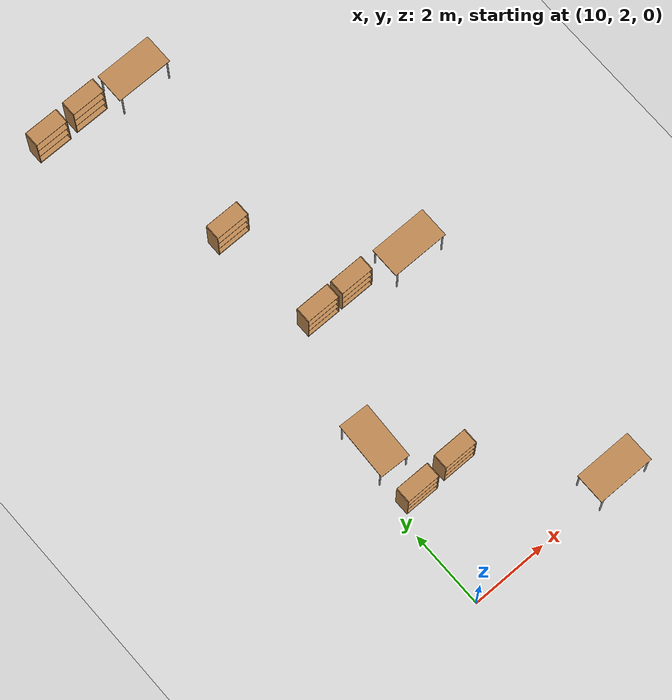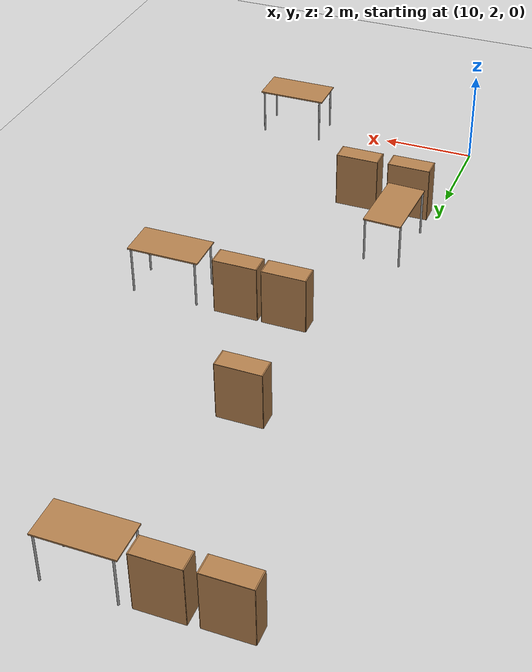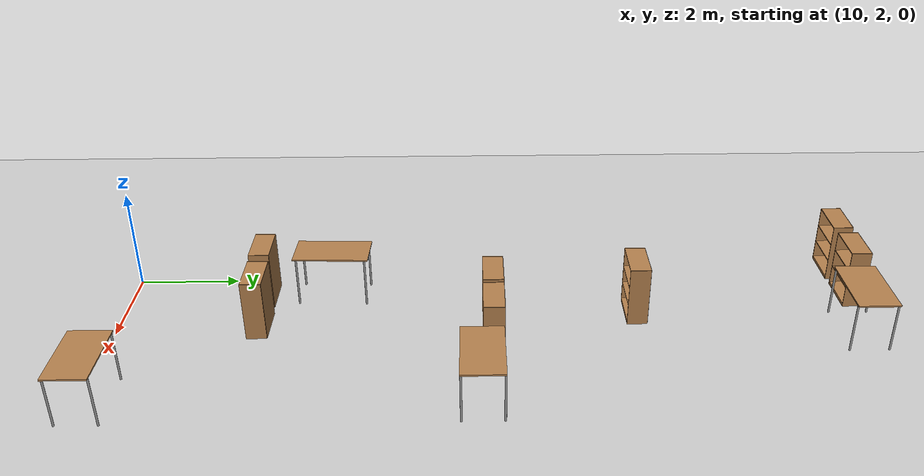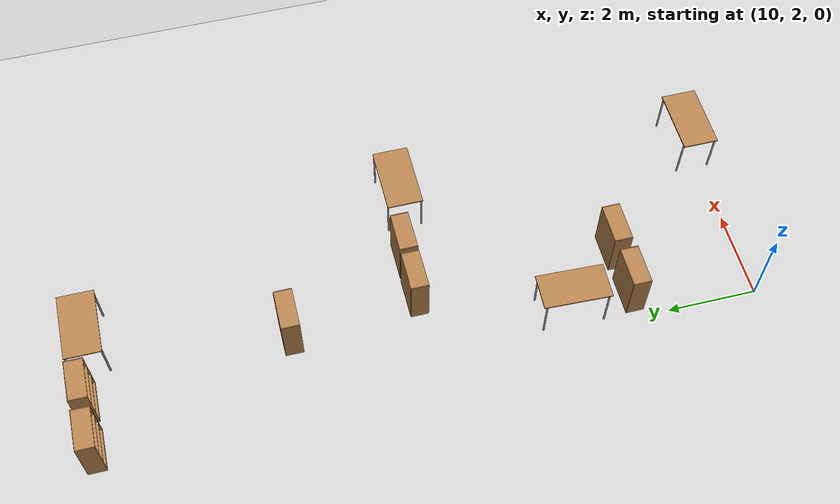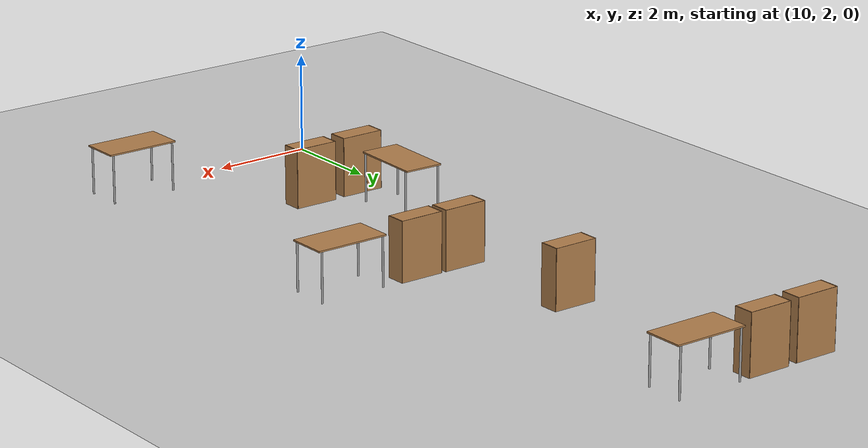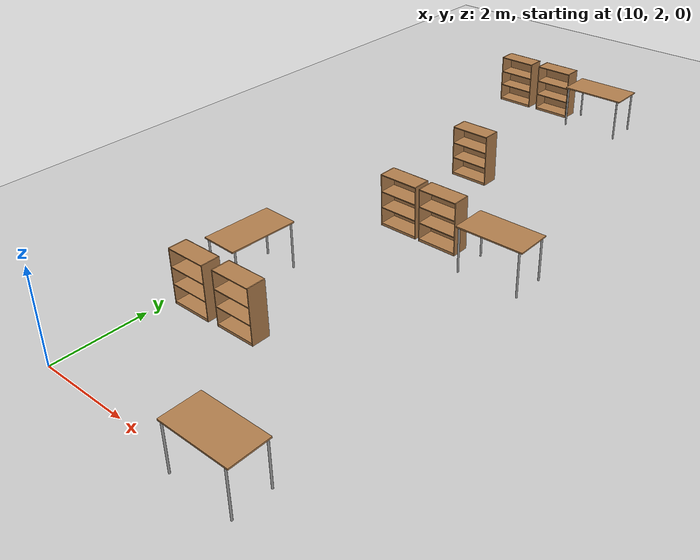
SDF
<sdf version="1.7">
 <world name="default">
  <model name="ground_plane">
   <static>1</static>
   <link name="link">
    <collision name="collision">
     <geometry><plane><normal>0 0 1</normal><size>100 100</size></plane></geometry>
     <surface><friction><ode><mu>100</mu><mu2>50</mu2></ode></friction></surface>
    </collision>
    <visual name="visual">
     <cast_shadows>0</cast_shadows>
     <geometry><plane><normal>0 0 1</normal><size>100 100</size></plane></geometry>
     <material>
      <script><uri>file://media/materials/scripts/gazebo.material</uri><name>Gazebo/Grey</name></script>
     </material>
    </visual>
   </link>
  </model>
  <model name="bookshelf_0">
   <static>1</static>
   <link name="link">
    <inertial><mass>1</mass></inertial>
    <collision name="back">
     <pose>0 0.005 0.6 0 -0 0</pose>
     <geometry><box><size>0.9 0.01 1.2</size></box></geometry>
    </collision>
    <visual name="visual1">
     <pose>0 0.005 0.6 0 -0 0</pose>
     <geometry><box><size>0.9 0.01 1.2</size></box></geometry>
     <material>
      <script><uri>file://media/materials/scripts/gazebo.material</uri><name>Gazebo/Wood</name></script>
     </material>
    </visual>
    <collision name="left_side">
     <pose>0.45 -0.195 0.6 0 -0 0</pose>
     <geometry><box><size>0.02 0.4 1.2</size></box></geometry>
    </collision>
    <visual name="visual2">
     <pose>0.45 -0.195 0.6 0 -0 0</pose>
     <geometry><box><size>0.02 0.4 1.2</size></box></geometry>
     <material>
      <script><uri>file://media/materials/scripts/gazebo.material</uri><name>Gazebo/Wood</name></script>
     </material>
    </visual>
    <collision name="right_side">
     <pose>-0.45 -0.195 0.6 0 -0 0</pose>
     <geometry><box><size>0.02 0.4 1.2</size></box></geometry>
    </collision>
    <visual name="visual3">
     <pose>-0.45 -0.195 0.6 0 -0 0</pose>
     <geometry><box><size>0.02 0.4 1.2</size></box></geometry>
     <material>
      <script><uri>file://media/materials/scripts/gazebo.material</uri><name>Gazebo/Wood</name></script>
     </material>
    </visual>
    <collision name="bottom">
     <pose>0 -0.195 0.03 0 -0 0</pose>
     <geometry><box><size>0.88 0.4 0.06</size></box></geometry>
    </collision>
    <visual name="visual4">
     <pose>0 -0.195 0.03 0 -0 0</pose>
     <geometry><box><size>0.88 0.4 0.06</size></box></geometry>
     <material>
      <script><uri>file://media/materials/scripts/gazebo.material</uri><name>Gazebo/Wood</name></script>
     </material>
    </visual>
    <collision name="top">
     <pose>0 -0.195 1.19 0 -0 0</pose>
     <geometry><box><size>0.88 0.4 0.02</size></box></geometry>
    </collision>
    <visual name="visual5">
     <pose>0 -0.195 1.19 0 -0 0</pose>
     <geometry><box><size>0.88 0.4 0.02</size></box></geometry>
     <material>
      <script><uri>file://media/materials/scripts/gazebo.material</uri><name>Gazebo/Wood</name></script>
     </material>
    </visual>
    <collision name="low_shelf">
     <pose>0 -0.195 0.43 0 -0 0</pose>
     <geometry><box><size>0.88 0.4 0.02</size></box></geometry>
    </collision>
    <visual name="visual6">
     <pose>0 -0.195 0.43 0 -0 0</pose>
     <geometry><box><size>0.88 0.4 0.02</size></box></geometry>
     <material>
      <script><uri>file://media/materials/scripts/gazebo.material</uri><name>Gazebo/Wood</name></script>
     </material>
    </visual>
    <collision name="high_shelf">
     <pose>0 -0.195 0.8 0 -0 0</pose>
     <geometry><box><size>0.88 0.4 0.02</size></box></geometry>
    </collision>
    <visual name="visual7">
     <pose>0 -0.195 0.8 0 -0 0</pose>
     <geometry><box><size>0.88 0.4 0.02</size></box></geometry>
     <material>
      <script><uri>file://media/materials/scripts/gazebo.material</uri><name>Gazebo/Wood</name></script>
     </material>
    </visual>
   </link>
   <pose>11.3913 12.3426 0 0 -0 0</pose>
  </model>
  <model name="bookshelf_6">
   <static>1</static>
   <link name="link">
    <inertial><mass>1</mass></inertial>
    <collision name="back">
     <pose>0 0.005 0.6 0 -0 0</pose>
     <geometry><box><size>0.9 0.01 1.2</size></box></geometry>
    </collision>
    <visual name="visual1">
     <pose>0 0.005 0.6 0 -0 0</pose>
     <geometry><box><size>0.9 0.01 1.2</size></box></geometry>
     <material>
      <script><uri>file://media/materials/scripts/gazebo.material</uri><name>Gazebo/Wood</name></script>
     </material>
    </visual>
    <collision name="left_side">
     <pose>0.45 -0.195 0.6 0 -0 0</pose>
     <geometry><box><size>0.02 0.4 1.2</size></box></geometry>
    </collision>
    <visual name="visual2">
     <pose>0.45 -0.195 0.6 0 -0 0</pose>
     <geometry><box><size>0.02 0.4 1.2</size></box></geometry>
     <material>
      <script><uri>file://media/materials/scripts/gazebo.material</uri><name>Gazebo/Wood</name></script>
     </material>
    </visual>
    <collision name="right_side">
     <pose>-0.45 -0.195 0.6 0 -0 0</pose>
     <geometry><box><size>0.02 0.4 1.2</size></box></geometry>
    </collision>
    <visual name="visual3">
     <pose>-0.45 -0.195 0.6 0 -0 0</pose>
     <geometry><box><size>0.02 0.4 1.2</size></box></geometry>
     <material>
      <script><uri>file://media/materials/scripts/gazebo.material</uri><name>Gazebo/Wood</name></script>
     </material>
    </visual>
    <collision name="bottom">
     <pose>0 -0.195 0.03 0 -0 0</pose>
     <geometry><box><size>0.88 0.4 0.06</size></box></geometry>
    </collision>
    <visual name="visual4">
     <pose>0 -0.195 0.03 0 -0 0</pose>
     <geometry><box><size>0.88 0.4 0.06</size></box></geometry>
     <material>
      <script><uri>file://media/materials/scripts/gazebo.material</uri><name>Gazebo/Wood</name></script>
     </material>
    </visual>
    <collision name="top">
     <pose>0 -0.195 1.19 0 -0 0</pose>
     <geometry><box><size>0.88 0.4 0.02</size></box></geometry>
    </collision>
    <visual name="visual5">
     <pose>0 -0.195 1.19 0 -0 0</pose>
     <geometry><box><size>0.88 0.4 0.02</size></box></geometry>
     <material>
      <script><uri>file://media/materials/scripts/gazebo.material</uri><name>Gazebo/Wood</name></script>
     </material>
    </visual>
    <collision name="low_shelf">
     <pose>0 -0.195 0.43 0 -0 0</pose>
     <geometry><box><size>0.88 0.4 0.02</size></box></geometry>
    </collision>
    <visual name="visual6">
     <pose>0 -0.195 0.43 0 -0 0</pose>
     <geometry><box><size>0.88 0.4 0.02</size></box></geometry>
     <material>
      <script><uri>file://media/materials/scripts/gazebo.material</uri><name>Gazebo/Wood</name></script>
     </material>
    </visual>
    <collision name="high_shelf">
     <pose>0 -0.195 0.8 0 -0 0</pose>
     <geometry><box><size>0.88 0.4 0.02</size></box></geometry>
    </collision>
    <visual name="visual7">
     <pose>0 -0.195 0.8 0 -0 0</pose>
     <geometry><box><size>0.88 0.4 0.02</size></box></geometry>
     <material>
      <script><uri>file://media/materials/scripts/gazebo.material</uri><name>Gazebo/Wood</name></script>
     </material>
    </visual>
   </link>
   <pose>11.6676 9.51183 0 0 -0 0</pose>
  </model>
  <model name="bookshelf_7">
   <static>1</static>
   <link name="link">
    <inertial><mass>1</mass></inertial>
    <collision name="back">
     <pose>0 0.005 0.6 0 -0 0</pose>
     <geometry><box><size>0.9 0.01 1.2</size></box></geometry>
    </collision>
    <visual name="visual1">
     <pose>0 0.005 0.6 0 -0 0</pose>
     <geometry><box><size>0.9 0.01 1.2</size></box></geometry>
     <material>
      <script><uri>file://media/materials/scripts/gazebo.material</uri><name>Gazebo/Wood</name></script>
     </material>
    </visual>
    <collision name="left_side">
     <pose>0.45 -0.195 0.6 0 -0 0</pose>
     <geometry><box><size>0.02 0.4 1.2</size></box></geometry>
    </collision>
    <visual name="visual2">
     <pose>0.45 -0.195 0.6 0 -0 0</pose>
     <geometry><box><size>0.02 0.4 1.2</size></box></geometry>
     <material>
      <script><uri>file://media/materials/scripts/gazebo.material</uri><name>Gazebo/Wood</name></script>
     </material>
    </visual>
    <collision name="right_side">
     <pose>-0.45 -0.195 0.6 0 -0 0</pose>
     <geometry><box><size>0.02 0.4 1.2</size></box></geometry>
    </collision>
    <visual name="visual3">
     <pose>-0.45 -0.195 0.6 0 -0 0</pose>
     <geometry><box><size>0.02 0.4 1.2</size></box></geometry>
     <material>
      <script><uri>file://media/materials/scripts/gazebo.material</uri><name>Gazebo/Wood</name></script>
     </material>
    </visual>
    <collision name="bottom">
     <pose>0 -0.195 0.03 0 -0 0</pose>
     <geometry><box><size>0.88 0.4 0.06</size></box></geometry>
    </collision>
    <visual name="visual4">
     <pose>0 -0.195 0.03 0 -0 0</pose>
     <geometry><box><size>0.88 0.4 0.06</size></box></geometry>
     <material>
      <script><uri>file://media/materials/scripts/gazebo.material</uri><name>Gazebo/Wood</name></script>
     </material>
    </visual>
    <collision name="top">
     <pose>0 -0.195 1.19 0 -0 0</pose>
     <geometry><box><size>0.88 0.4 0.02</size></box></geometry>
    </collision>
    <visual name="visual5">
     <pose>0 -0.195 1.19 0 -0 0</pose>
     <geometry><box><size>0.88 0.4 0.02</size></box></geometry>
     <material>
      <script><uri>file://media/materials/scripts/gazebo.material</uri><name>Gazebo/Wood</name></script>
     </material>
    </visual>
    <collision name="low_shelf">
     <pose>0 -0.195 0.43 0 -0 0</pose>
     <geometry><box><size>0.88 0.4 0.02</size></box></geometry>
    </collision>
    <visual name="visual6">
     <pose>0 -0.195 0.43 0 -0 0</pose>
     <geometry><box><size>0.88 0.4 0.02</size></box></geometry>
     <material>
      <script><uri>file://media/materials/scripts/gazebo.material</uri><name>Gazebo/Wood</name></script>
     </material>
    </visual>
    <collision name="high_shelf">
     <pose>0 -0.195 0.8 0 -0 0</pose>
     <geometry><box><size>0.88 0.4 0.02</size></box></geometry>
    </collision>
    <visual name="visual7">
     <pose>0 -0.195 0.8 0 -0 0</pose>
     <geometry><box><size>0.88 0.4 0.02</size></box></geometry>
     <material>
      <script><uri>file://media/materials/scripts/gazebo.material</uri><name>Gazebo/Wood</name></script>
     </material>
    </visual>
   </link>
   <pose>12.6698 9.5071 0 0 -0 0</pose>
  </model>
  <model name="bookshelf_8">
   <static>1</static>
   <link name="link">
    <inertial><mass>1</mass></inertial>
    <collision name="back">
     <pose>0 0.005 0.6 0 -0 0</pose>
     <geometry><box><size>0.9 0.01 1.2</size></box></geometry>
    </collision>
    <visual name="visual1">
     <pose>0 0.005 0.6 0 -0 0</pose>
     <geometry><box><size>0.9 0.01 1.2</size></box></geometry>
     <material>
      <script><uri>file://media/materials/scripts/gazebo.material</uri><name>Gazebo/Wood</name></script>
     </material>
    </visual>
    <collision name="left_side">
     <pose>0.45 -0.195 0.6 0 -0 0</pose>
     <geometry><box><size>0.02 0.4 1.2</size></box></geometry>
    </collision>
    <visual name="visual2">
     <pose>0.45 -0.195 0.6 0 -0 0</pose>
     <geometry><box><size>0.02 0.4 1.2</size></box></geometry>
     <material>
      <script><uri>file://media/materials/scripts/gazebo.material</uri><name>Gazebo/Wood</name></script>
     </material>
    </visual>
    <collision name="right_side">
     <pose>-0.45 -0.195 0.6 0 -0 0</pose>
     <geometry><box><size>0.02 0.4 1.2</size></box></geometry>
    </collision>
    <visual name="visual3">
     <pose>-0.45 -0.195 0.6 0 -0 0</pose>
     <geometry><box><size>0.02 0.4 1.2</size></box></geometry>
     <material>
      <script><uri>file://media/materials/scripts/gazebo.material</uri><name>Gazebo/Wood</name></script>
     </material>
    </visual>
    <collision name="bottom">
     <pose>0 -0.195 0.03 0 -0 0</pose>
     <geometry><box><size>0.88 0.4 0.06</size></box></geometry>
    </collision>
    <visual name="visual4">
     <pose>0 -0.195 0.03 0 -0 0</pose>
     <geometry><box><size>0.88 0.4 0.06</size></box></geometry>
     <material>
      <script><uri>file://media/materials/scripts/gazebo.material</uri><name>Gazebo/Wood</name></script>
     </material>
    </visual>
    <collision name="top">
     <pose>0 -0.195 1.19 0 -0 0</pose>
     <geometry><box><size>0.88 0.4 0.02</size></box></geometry>
    </collision>
    <visual name="visual5">
     <pose>0 -0.195 1.19 0 -0 0</pose>
     <geometry><box><size>0.88 0.4 0.02</size></box></geometry>
     <material>
      <script><uri>file://media/materials/scripts/gazebo.material</uri><name>Gazebo/Wood</name></script>
     </material>
    </visual>
    <collision name="low_shelf">
     <pose>0 -0.195 0.43 0 -0 0</pose>
     <geometry><box><size>0.88 0.4 0.02</size></box></geometry>
    </collision>
    <visual name="visual6">
     <pose>0 -0.195 0.43 0 -0 0</pose>
     <geometry><box><size>0.88 0.4 0.02</size></box></geometry>
     <material>
      <script><uri>file://media/materials/scripts/gazebo.material</uri><name>Gazebo/Wood</name></script>
     </material>
    </visual>
    <collision name="high_shelf">
     <pose>0 -0.195 0.8 0 -0 0</pose>
     <geometry><box><size>0.88 0.4 0.02</size></box></geometry>
    </collision>
    <visual name="visual7">
     <pose>0 -0.195 0.8 0 -0 0</pose>
     <geometry><box><size>0.88 0.4 0.02</size></box></geometry>
     <material>
      <script><uri>file://media/materials/scripts/gazebo.material</uri><name>Gazebo/Wood</name></script>
     </material>
    </visual>
   </link>
   <pose>9.70396 16.7596 0 0 -0 0</pose>
  </model>
  <model name="bookshelf_9">
   <static>1</static>
   <link name="link">
    <inertial><mass>1</mass></inertial>
    <collision name="back">
     <pose>0 0.005 0.6 0 -0 0</pose>
     <geometry><box><size>0.9 0.01 1.2</size></box></geometry>
    </collision>
    <visual name="visual1">
     <pose>0 0.005 0.6 0 -0 0</pose>
     <geometry><box><size>0.9 0.01 1.2</size></box></geometry>
     <material>
      <script><uri>file://media/materials/scripts/gazebo.material</uri><name>Gazebo/Wood</name></script>
     </material>
    </visual>
    <collision name="left_side">
     <pose>0.45 -0.195 0.6 0 -0 0</pose>
     <geometry><box><size>0.02 0.4 1.2</size></box></geometry>
    </collision>
    <visual name="visual2">
     <pose>0.45 -0.195 0.6 0 -0 0</pose>
     <geometry><box><size>0.02 0.4 1.2</size></box></geometry>
     <material>
      <script><uri>file://media/materials/scripts/gazebo.material</uri><name>Gazebo/Wood</name></script>
     </material>
    </visual>
    <collision name="right_side">
     <pose>-0.45 -0.195 0.6 0 -0 0</pose>
     <geometry><box><size>0.02 0.4 1.2</size></box></geometry>
    </collision>
    <visual name="visual3">
     <pose>-0.45 -0.195 0.6 0 -0 0</pose>
     <geometry><box><size>0.02 0.4 1.2</size></box></geometry>
     <material>
      <script><uri>file://media/materials/scripts/gazebo.material</uri><name>Gazebo/Wood</name></script>
     </material>
    </visual>
    <collision name="bottom">
     <pose>0 -0.195 0.03 0 -0 0</pose>
     <geometry><box><size>0.88 0.4 0.06</size></box></geometry>
    </collision>
    <visual name="visual4">
     <pose>0 -0.195 0.03 0 -0 0</pose>
     <geometry><box><size>0.88 0.4 0.06</size></box></geometry>
     <material>
      <script><uri>file://media/materials/scripts/gazebo.material</uri><name>Gazebo/Wood</name></script>
     </material>
    </visual>
    <collision name="top">
     <pose>0 -0.195 1.19 0 -0 0</pose>
     <geometry><box><size>0.88 0.4 0.02</size></box></geometry>
    </collision>
    <visual name="visual5">
     <pose>0 -0.195 1.19 0 -0 0</pose>
     <geometry><box><size>0.88 0.4 0.02</size></box></geometry>
     <material>
      <script><uri>file://media/materials/scripts/gazebo.material</uri><name>Gazebo/Wood</name></script>
     </material>
    </visual>
    <collision name="low_shelf">
     <pose>0 -0.195 0.43 0 -0 0</pose>
     <geometry><box><size>0.88 0.4 0.02</size></box></geometry>
    </collision>
    <visual name="visual6">
     <pose>0 -0.195 0.43 0 -0 0</pose>
     <geometry><box><size>0.88 0.4 0.02</size></box></geometry>
     <material>
      <script><uri>file://media/materials/scripts/gazebo.material</uri><name>Gazebo/Wood</name></script>
     </material>
    </visual>
    <collision name="high_shelf">
     <pose>0 -0.195 0.8 0 -0 0</pose>
     <geometry><box><size>0.88 0.4 0.02</size></box></geometry>
    </collision>
    <visual name="visual7">
     <pose>0 -0.195 0.8 0 -0 0</pose>
     <geometry><box><size>0.88 0.4 0.02</size></box></geometry>
     <material>
      <script><uri>file://media/materials/scripts/gazebo.material</uri><name>Gazebo/Wood</name></script>
     </material>
    </visual>
   </link>
   <pose>10.8167 16.7835 0 0 -0 0</pose>
  </model>
  <model name="bookshelf_10">
   <static>1</static>
   <link name="link">
    <inertial><mass>1</mass></inertial>
    <collision name="back">
     <pose>0 0.005 0.6 0 -0 0</pose>
     <geometry><box><size>0.9 0.01 1.2</size></box></geometry>
    </collision>
    <visual name="visual1">
     <pose>0 0.005 0.6 0 -0 0</pose>
     <geometry><box><size>0.9 0.01 1.2</size></box></geometry>
     <material>
      <script><uri>file://media/materials/scripts/gazebo.material</uri><name>Gazebo/Wood</name></script>
     </material>
    </visual>
    <collision name="left_side">
     <pose>0.45 -0.195 0.6 0 -0 0</pose>
     <geometry><box><size>0.02 0.4 1.2</size></box></geometry>
    </collision>
    <visual name="visual2">
     <pose>0.45 -0.195 0.6 0 -0 0</pose>
     <geometry><box><size>0.02 0.4 1.2</size></box></geometry>
     <material>
      <script><uri>file://media/materials/scripts/gazebo.material</uri><name>Gazebo/Wood</name></script>
     </material>
    </visual>
    <collision name="right_side">
     <pose>-0.45 -0.195 0.6 0 -0 0</pose>
     <geometry><box><size>0.02 0.4 1.2</size></box></geometry>
    </collision>
    <visual name="visual3">
     <pose>-0.45 -0.195 0.6 0 -0 0</pose>
     <geometry><box><size>0.02 0.4 1.2</size></box></geometry>
     <material>
      <script><uri>file://media/materials/scripts/gazebo.material</uri><name>Gazebo/Wood</name></script>
     </material>
    </visual>
    <collision name="bottom">
     <pose>0 -0.195 0.03 0 -0 0</pose>
     <geometry><box><size>0.88 0.4 0.06</size></box></geometry>
    </collision>
    <visual name="visual4">
     <pose>0 -0.195 0.03 0 -0 0</pose>
     <geometry><box><size>0.88 0.4 0.06</size></box></geometry>
     <material>
      <script><uri>file://media/materials/scripts/gazebo.material</uri><name>Gazebo/Wood</name></script>
     </material>
    </visual>
    <collision name="top">
     <pose>0 -0.195 1.19 0 -0 0</pose>
     <geometry><box><size>0.88 0.4 0.02</size></box></geometry>
    </collision>
    <visual name="visual5">
     <pose>0 -0.195 1.19 0 -0 0</pose>
     <geometry><box><size>0.88 0.4 0.02</size></box></geometry>
     <material>
      <script><uri>file://media/materials/scripts/gazebo.material</uri><name>Gazebo/Wood</name></script>
     </material>
    </visual>
    <collision name="low_shelf">
     <pose>0 -0.195 0.43 0 -0 0</pose>
     <geometry><box><size>0.88 0.4 0.02</size></box></geometry>
    </collision>
    <visual name="visual6">
     <pose>0 -0.195 0.43 0 -0 0</pose>
     <geometry><box><size>0.88 0.4 0.02</size></box></geometry>
     <material>
      <script><uri>file://media/materials/scripts/gazebo.material</uri><name>Gazebo/Wood</name></script>
     </material>
    </visual>
    <collision name="high_shelf">
     <pose>0 -0.195 0.8 0 -0 0</pose>
     <geometry><box><size>0.88 0.4 0.02</size></box></geometry>
    </collision>
    <visual name="visual7">
     <pose>0 -0.195 0.8 0 -0 0</pose>
     <geometry><box><size>0.88 0.4 0.02</size></box></geometry>
     <material>
      <script><uri>file://media/materials/scripts/gazebo.material</uri><name>Gazebo/Wood</name></script>
     </material>
    </visual>
   </link>
   <pose>10.6299 4.9198 0 0 -0 0</pose>
  </model>
  <model name="bookshelf_11">
   <static>1</static>
   <link name="link">
    <inertial><mass>1</mass></inertial>
    <collision name="back">
     <pose>0 0.005 0.6 0 -0 0</pose>
     <geometry><box><size>0.9 0.01 1.2</size></box></geometry>
    </collision>
    <visual name="visual1">
     <pose>0 0.005 0.6 0 -0 0</pose>
     <geometry><box><size>0.9 0.01 1.2</size></box></geometry>
     <material>
      <script><uri>file://media/materials/scripts/gazebo.material</uri><name>Gazebo/Wood</name></script>
     </material>
    </visual>
    <collision name="left_side">
     <pose>0.45 -0.195 0.6 0 -0 0</pose>
     <geometry><box><size>0.02 0.4 1.2</size></box></geometry>
    </collision>
    <visual name="visual2">
     <pose>0.45 -0.195 0.6 0 -0 0</pose>
     <geometry><box><size>0.02 0.4 1.2</size></box></geometry>
     <material>
      <script><uri>file://media/materials/scripts/gazebo.material</uri><name>Gazebo/Wood</name></script>
     </material>
    </visual>
    <collision name="right_side">
     <pose>-0.45 -0.195 0.6 0 -0 0</pose>
     <geometry><box><size>0.02 0.4 1.2</size></box></geometry>
    </collision>
    <visual name="visual3">
     <pose>-0.45 -0.195 0.6 0 -0 0</pose>
     <geometry><box><size>0.02 0.4 1.2</size></box></geometry>
     <material>
      <script><uri>file://media/materials/scripts/gazebo.material</uri><name>Gazebo/Wood</name></script>
     </material>
    </visual>
    <collision name="bottom">
     <pose>0 -0.195 0.03 0 -0 0</pose>
     <geometry><box><size>0.88 0.4 0.06</size></box></geometry>
    </collision>
    <visual name="visual4">
     <pose>0 -0.195 0.03 0 -0 0</pose>
     <geometry><box><size>0.88 0.4 0.06</size></box></geometry>
     <material>
      <script><uri>file://media/materials/scripts/gazebo.material</uri><name>Gazebo/Wood</name></script>
     </material>
    </visual>
    <collision name="top">
     <pose>0 -0.195 1.19 0 -0 0</pose>
     <geometry><box><size>0.88 0.4 0.02</size></box></geometry>
    </collision>
    <visual name="visual5">
     <pose>0 -0.195 1.19 0 -0 0</pose>
     <geometry><box><size>0.88 0.4 0.02</size></box></geometry>
     <material>
      <script><uri>file://media/materials/scripts/gazebo.material</uri><name>Gazebo/Wood</name></script>
     </material>
    </visual>
    <collision name="low_shelf">
     <pose>0 -0.195 0.43 0 -0 0</pose>
     <geometry><box><size>0.88 0.4 0.02</size></box></geometry>
    </collision>
    <visual name="visual6">
     <pose>0 -0.195 0.43 0 -0 0</pose>
     <geometry><box><size>0.88 0.4 0.02</size></box></geometry>
     <material>
      <script><uri>file://media/materials/scripts/gazebo.material</uri><name>Gazebo/Wood</name></script>
     </material>
    </visual>
    <collision name="high_shelf">
     <pose>0 -0.195 0.8 0 -0 0</pose>
     <geometry><box><size>0.88 0.4 0.02</size></box></geometry>
    </collision>
    <visual name="visual7">
     <pose>0 -0.195 0.8 0 -0 0</pose>
     <geometry><box><size>0.88 0.4 0.02</size></box></geometry>
     <material>
      <script><uri>file://media/materials/scripts/gazebo.material</uri><name>Gazebo/Wood</name></script>
     </material>
    </visual>
   </link>
   <pose>11.7645 4.95232 0 0 -0 0</pose>
  </model>
  <model name="table">
   <static>1</static>
   <link name="link">
    <collision name="surface">
     <pose>0 0 1 0 -0 0</pose>
     <geometry><box><size>1.5 0.8 0.03</size></box></geometry>
     <surface><friction><ode><mu>0.6</mu><mu2>0.6</mu2></ode></friction></surface>
    </collision>
    <visual name="visual1">
     <pose>0 0 1 0 -0 0</pose>
     <geometry><box><size>1.5 0.8 0.03</size></box></geometry>
     <material>
      <script><uri>file://media/materials/scripts/gazebo.material</uri><name>Gazebo/Wood</name></script>
     </material>
    </visual>
    <collision name="front_left_leg">
     <pose>0.68 0.38 0.5 0 -0 0</pose>
     <geometry><cylinder><radius>0.02</radius><length>1</length></cylinder></geometry>
    </collision>
    <visual name="front_left_leg">
     <pose>0.68 0.38 0.5 0 -0 0</pose>
     <geometry><cylinder><radius>0.02</radius><length>1</length></cylinder></geometry>
     <material>
      <script><uri>file://media/materials/scripts/gazebo.material</uri><name>Gazebo/Grey</name></script>
     </material>
    </visual>
    <collision name="front_right_leg">
     <pose>0.68 -0.38 0.5 0 -0 0</pose>
     <geometry><cylinder><radius>0.02</radius><length>1</length></cylinder></geometry>
    </collision>
    <visual name="front_right_leg">
     <pose>0.68 -0.38 0.5 0 -0 0</pose>
     <geometry><cylinder><radius>0.02</radius><length>1</length></cylinder></geometry>
     <material>
      <script><uri>file://media/materials/scripts/gazebo.material</uri><name>Gazebo/Grey</name></script>
     </material>
    </visual>
    <collision name="back_right_leg">
     <pose>-0.68 -0.38 0.5 0 -0 0</pose>
     <geometry><cylinder><radius>0.02</radius><length>1</length></cylinder></geometry>
    </collision>
    <visual name="back_right_leg">
     <pose>-0.68 -0.38 0.5 0 -0 0</pose>
     <geometry><cylinder><radius>0.02</radius><length>1</length></cylinder></geometry>
     <material>
      <script><uri>file://media/materials/scripts/gazebo.material</uri><name>Gazebo/Grey</name></script>
     </material>
    </visual>
    <collision name="back_left_leg">
     <pose>-0.68 0.38 0.5 0 -0 0</pose>
     <geometry><cylinder><radius>0.02</radius><length>1</length></cylinder></geometry>
    </collision>
    <visual name="back_left_leg">
     <pose>-0.68 0.38 0.5 0 -0 0</pose>
     <geometry><cylinder><radius>0.02</radius><length>1</length></cylinder></geometry>
     <material>
      <script><uri>file://media/materials/scripts/gazebo.material</uri><name>Gazebo/Grey</name></script>
     </material>
    </visual>
   </link>
   <pose>12.1796 16.418 0 0 -0 0</pose>
  </model>
  <model name="table_0">
   <static>1</static>
   <link name="link">
    <collision name="surface">
     <pose>0 0 1 0 -0 0</pose>
     <geometry><box><size>1.5 0.8 0.03</size></box></geometry>
     <surface><friction><ode><mu>0.6</mu><mu2>0.6</mu2></ode></friction></surface>
    </collision>
    <visual name="visual1">
     <pose>0 0 1 0 -0 0</pose>
     <geometry><box><size>1.5 0.8 0.03</size></box></geometry>
     <material>
      <script><uri>file://media/materials/scripts/gazebo.material</uri><name>Gazebo/Wood</name></script>
     </material>
    </visual>
    <collision name="front_left_leg">
     <pose>0.68 0.38 0.5 0 -0 0</pose>
     <geometry><cylinder><radius>0.02</radius><length>1</length></cylinder></geometry>
    </collision>
    <visual name="front_left_leg">
     <pose>0.68 0.38 0.5 0 -0 0</pose>
     <geometry><cylinder><radius>0.02</radius><length>1</length></cylinder></geometry>
     <material>
      <script><uri>file://media/materials/scripts/gazebo.material</uri><name>Gazebo/Grey</name></script>
     </material>
    </visual>
    <collision name="front_right_leg">
     <pose>0.68 -0.38 0.5 0 -0 0</pose>
     <geometry><cylinder><radius>0.02</radius><length>1</length></cylinder></geometry>
    </collision>
    <visual name="front_right_leg">
     <pose>0.68 -0.38 0.5 0 -0 0</pose>
     <geometry><cylinder><radius>0.02</radius><length>1</length></cylinder></geometry>
     <material>
      <script><uri>file://media/materials/scripts/gazebo.material</uri><name>Gazebo/Grey</name></script>
     </material>
    </visual>
    <collision name="back_right_leg">
     <pose>-0.68 -0.38 0.5 0 -0 0</pose>
     <geometry><cylinder><radius>0.02</radius><length>1</length></cylinder></geometry>
    </collision>
    <visual name="back_right_leg">
     <pose>-0.68 -0.38 0.5 0 -0 0</pose>
     <geometry><cylinder><radius>0.02</radius><length>1</length></cylinder></geometry>
     <material>
      <script><uri>file://media/materials/scripts/gazebo.material</uri><name>Gazebo/Grey</name></script>
     </material>
    </visual>
    <collision name="back_left_leg">
     <pose>-0.68 0.38 0.5 0 -0 0</pose>
     <geometry><cylinder><radius>0.02</radius><length>1</length></cylinder></geometry>
    </collision>
    <visual name="back_left_leg">
     <pose>-0.68 0.38 0.5 0 -0 0</pose>
     <geometry><cylinder><radius>0.02</radius><length>1</length></cylinder></geometry>
     <material>
      <script><uri>file://media/materials/scripts/gazebo.material</uri><name>Gazebo/Grey</name></script>
     </material>
    </visual>
   </link>
   <pose>14.207 9.08598 0 0 -0 0</pose>
  </model>
  <model name="table_1">
   <static>1</static>
   <link name="link">
    <collision name="surface">
     <pose>0 0 1 0 -0 0</pose>
     <geometry><box><size>1.5 0.8 0.03</size></box></geometry>
     <surface><friction><ode><mu>0.6</mu><mu2>0.6</mu2></ode></friction></surface>
    </collision>
    <visual name="visual1">
     <pose>0 0 1 0 -0 0</pose>
     <geometry><box><size>1.5 0.8 0.03</size></box></geometry>
     <material>
      <script><uri>file://media/materials/scripts/gazebo.material</uri><name>Gazebo/Wood</name></script>
     </material>
    </visual>
    <collision name="front_left_leg">
     <pose>0.68 0.38 0.5 0 -0 0</pose>
     <geometry><cylinder><radius>0.02</radius><length>1</length></cylinder></geometry>
    </collision>
    <visual name="front_left_leg">
     <pose>0.68 0.38 0.5 0 -0 0</pose>
     <geometry><cylinder><radius>0.02</radius><length>1</length></cylinder></geometry>
     <material>
      <script><uri>file://media/materials/scripts/gazebo.material</uri><name>Gazebo/Grey</name></script>
     </material>
    </visual>
    <collision name="front_right_leg">
     <pose>0.68 -0.38 0.5 0 -0 0</pose>
     <geometry><cylinder><radius>0.02</radius><length>1</length></cylinder></geometry>
    </collision>
    <visual name="front_right_leg">
     <pose>0.68 -0.38 0.5 0 -0 0</pose>
     <geometry><cylinder><radius>0.02</radius><length>1</length></cylinder></geometry>
     <material>
      <script><uri>file://media/materials/scripts/gazebo.material</uri><name>Gazebo/Grey</name></script>
     </material>
    </visual>
    <collision name="back_right_leg">
     <pose>-0.68 -0.38 0.5 0 -0 0</pose>
     <geometry><cylinder><radius>0.02</radius><length>1</length></cylinder></geometry>
    </collision>
    <visual name="back_right_leg">
     <pose>-0.68 -0.38 0.5 0 -0 0</pose>
     <geometry><cylinder><radius>0.02</radius><length>1</length></cylinder></geometry>
     <material>
      <script><uri>file://media/materials/scripts/gazebo.material</uri><name>Gazebo/Grey</name></script>
     </material>
    </visual>
    <collision name="back_left_leg">
     <pose>-0.68 0.38 0.5 0 -0 0</pose>
     <geometry><cylinder><radius>0.02</radius><length>1</length></cylinder></geometry>
    </collision>
    <visual name="back_left_leg">
     <pose>-0.68 0.38 0.5 0 -0 0</pose>
     <geometry><cylinder><radius>0.02</radius><length>1</length></cylinder></geometry>
     <material>
      <script><uri>file://media/materials/scripts/gazebo.material</uri><name>Gazebo/Grey</name></script>
     </material>
    </visual>
   </link>
   <pose>10.5603 6.10895 0 0 -0 1.53175</pose>
  </model>
  <model name="table_2">
   <static>1</static>
   <link name="link">
    <collision name="surface">
     <pose>0 0 1 0 -0 0</pose>
     <geometry><box><size>1.5 0.8 0.03</size></box></geometry>
     <surface><friction><ode><mu>0.6</mu><mu2>0.6</mu2></ode></friction></surface>
    </collision>
    <visual name="visual1">
     <pose>0 0 1 0 -0 0</pose>
     <geometry><box><size>1.5 0.8 0.03</size></box></geometry>
     <material>
      <script><uri>file://media/materials/scripts/gazebo.material</uri><name>Gazebo/Wood</name></script>
     </material>
    </visual>
    <collision name="front_left_leg">
     <pose>0.68 0.38 0.5 0 -0 0</pose>
     <geometry><cylinder><radius>0.02</radius><length>1</length></cylinder></geometry>
    </collision>
    <visual name="front_left_leg">
     <pose>0.68 0.38 0.5 0 -0 0</pose>
     <geometry><cylinder><radius>0.02</radius><length>1</length></cylinder></geometry>
     <material>
      <script><uri>file://media/materials/scripts/gazebo.material</uri><name>Gazebo/Grey</name></script>
     </material>
    </visual>
    <collision name="front_right_leg">
     <pose>0.68 -0.38 0.5 0 -0 0</pose>
     <geometry><cylinder><radius>0.02</radius><length>1</length></cylinder></geometry>
    </collision>
    <visual name="front_right_leg">
     <pose>0.68 -0.38 0.5 0 -0 0</pose>
     <geometry><cylinder><radius>0.02</radius><length>1</length></cylinder></geometry>
     <material>
      <script><uri>file://media/materials/scripts/gazebo.material</uri><name>Gazebo/Grey</name></script>
     </material>
    </visual>
    <collision name="back_right_leg">
     <pose>-0.68 -0.38 0.5 0 -0 0</pose>
     <geometry><cylinder><radius>0.02</radius><length>1</length></cylinder></geometry>
    </collision>
    <visual name="back_right_leg">
     <pose>-0.68 -0.38 0.5 0 -0 0</pose>
     <geometry><cylinder><radius>0.02</radius><length>1</length></cylinder></geometry>
     <material>
      <script><uri>file://media/materials/scripts/gazebo.material</uri><name>Gazebo/Grey</name></script>
     </material>
    </visual>
    <collision name="back_left_leg">
     <pose>-0.68 0.38 0.5 0 -0 0</pose>
     <geometry><cylinder><radius>0.02</radius><length>1</length></cylinder></geometry>
    </collision>
    <visual name="back_left_leg">
     <pose>-0.68 0.38 0.5 0 -0 0</pose>
     <geometry><cylinder><radius>0.02</radius><length>1</length></cylinder></geometry>
     <material>
      <script><uri>file://media/materials/scripts/gazebo.material</uri><name>Gazebo/Grey</name></script>
     </material>
    </visual>
   </link>
   <pose>14.1923 2.14817 0 0 -0 0</pose>
  </model>
 </world>
</sdf>
